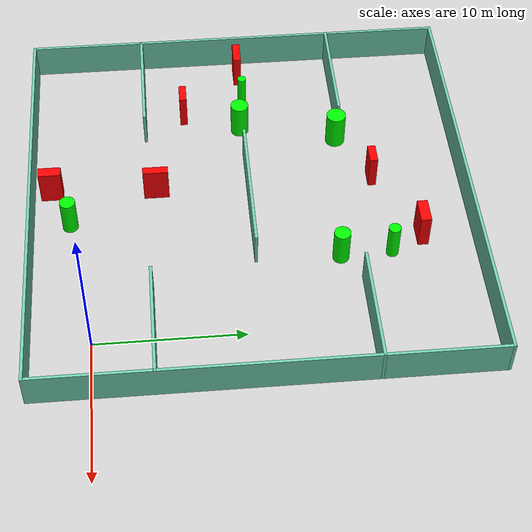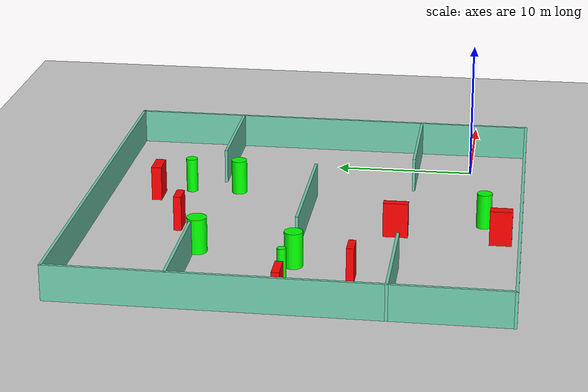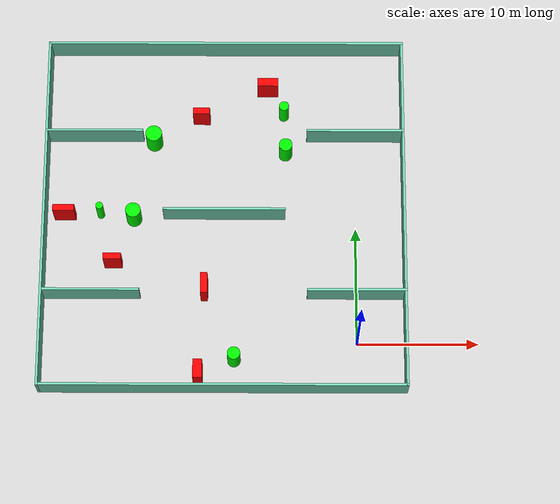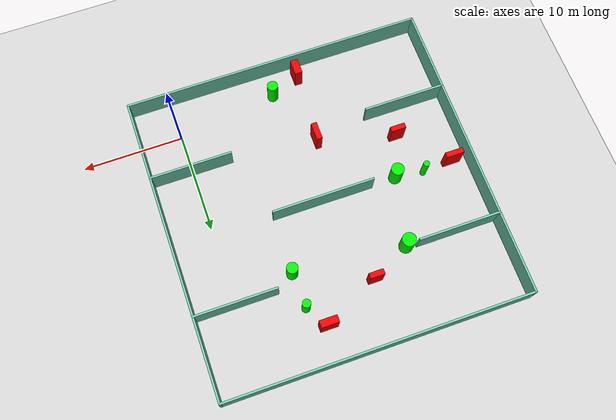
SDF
<sdf version="1.7">
 <world name="default">
  <light name="sun" type="directional">
   <pose>0 0 10 0 -0 0</pose>
   <diffuse>0.8 0.8 0.8 1</diffuse>
   <specular>0.2 0.2 0.2 1</specular>
   <attenuation>
    <range>1000</range>
    <constant>0.9</constant>
    <linear>0.01</linear>
    <quadratic>0.001</quadratic>
   </attenuation>
   <direction>-0.5 0.1 -0.9</direction>
   <spot><inner_angle>0</inner_angle><outer_angle>0</outer_angle><falloff>0</falloff></spot>
  </light>
  <model name="ground_plane">
   <static>1</static>
   <link name="link">
    <collision name="collision">
     <geometry><plane><normal>0 0 1</normal><size>100 100</size></plane></geometry>
     <surface>
      <contact><collide_bitmask>65535</collide_bitmask></contact>
      <friction><ode><mu>100</mu><mu2>50</mu2></ode></friction>
     </surface>
    </collision>
    <visual name="visual">
     <cast_shadows>0</cast_shadows>
     <geometry><plane><normal>0 0 1</normal><size>100 100</size></plane></geometry>
     <material>
      <script><uri>file://media/materials/scripts/gazebo.material</uri><name>Gazebo/Grey</name></script>
     </material>
    </visual>
   </link>
  </model>
  <gravity>0 0 -9.8</gravity>
  <magnetic_field>6e-06 2.3e-05 -4.2e-05</magnetic_field>
  <atmosphere type="adiabatic"/>
  <physics type="ode">
   <max_step_size>0.001</max_step_size>
   <real_time_factor>1</real_time_factor>
   <real_time_update_rate>1000</real_time_update_rate>
  </physics>
  <scene><ambient>0.4 0.4 0.4 1</ambient><background>0.7 0.7 0.7 1</background><shadows>1</shadows></scene>
  <spherical_coordinates>
   <surface_model>EARTH_WGS84</surface_model>
   <latitude_deg>0</latitude_deg>
   <longitude_deg>0</longitude_deg>
   <elevation>0</elevation>
   <heading_deg>0</heading_deg>
  </spherical_coordinates>
  <model name="my_base_walls">
   <link name="Wall_10">
    <collision name="Wall_10_Collision">
     <geometry><box><size>8.2 0.2 2.5</size></box></geometry>
     <pose>0 0 1.25 0 -0 0</pose>
    </collision>
    <visual name="Wall_10_Visual">
     <pose>0 0 1.25 0 -0 0</pose>
     <geometry><box><size>8.2 0.2 2.5</size></box></geometry>
     <material>
      <script><uri>file://media/materials/scripts/gazebo.material</uri><name>Gazebo/Grey</name></script>
      <ambient>0.435294 0.796078 0.67451 1</ambient>
     </material>
     <meta><layer>0</layer></meta>
    </visual>
    <pose>-11 -7 0 0 -0 0</pose>
   </link>
   <link name="Wall_12">
    <collision name="Wall_12_Collision">
     <geometry><box><size>8.2 0.2 2.5</size></box></geometry>
     <pose>0 0 1.25 0 -0 0</pose>
    </collision>
    <visual name="Wall_12_Visual">
     <pose>0 0 1.25 0 -0 0</pose>
     <geometry><box><size>8.2 0.2 2.5</size></box></geometry>
     <material>
      <script><uri>file://media/materials/scripts/gazebo.material</uri><name>Gazebo/Grey</name></script>
      <ambient>0.435294 0.796078 0.67451 1</ambient>
     </material>
     <meta><layer>0</layer></meta>
    </visual>
    <pose>-11 7 0 0 -0 0</pose>
   </link>
   <link name="Wall_14">
    <collision name="Wall_14_Collision">
     <geometry><box><size>8.2 0.2 2.5</size></box></geometry>
     <pose>0 0 1.25 0 -0 0</pose>
    </collision>
    <visual name="Wall_14_Visual">
     <pose>0 0 1.25 0 -0 0</pose>
     <geometry><box><size>8.2 0.2 2.5</size></box></geometry>
     <material>
      <script><uri>file://media/materials/scripts/gazebo.material</uri><name>Gazebo/Grey</name></script>
      <ambient>0.435294 0.796078 0.67451 1</ambient>
     </material>
     <meta><layer>0</layer></meta>
    </visual>
    <pose>11 7 0 0 -0 3.14159</pose>
   </link>
   <link name="Wall_16">
    <collision name="Wall_16_Collision">
     <geometry><box><size>10.2 0.2 2.5</size></box></geometry>
     <pose>0 0 1.25 0 -0 0</pose>
    </collision>
    <visual name="Wall_16_Visual">
     <pose>0 0 1.25 0 -0 0</pose>
     <geometry><box><size>10.2 0.2 2.5</size></box></geometry>
     <material>
      <script><uri>file://media/materials/scripts/gazebo.material</uri><name>Gazebo/Grey</name></script>
      <ambient>0.435294 0.796078 0.67451 1</ambient>
     </material>
     <meta><layer>0</layer></meta>
    </visual>
    <pose>0 0 0 0 -0 3.14159</pose>
   </link>
   <link name="Wall_2">
    <collision name="Wall_2_Collision">
     <geometry><box><size>30.2 0.2 2.5</size></box></geometry>
     <pose>0 0 1.25 0 -0 0</pose>
    </collision>
    <visual name="Wall_2_Visual">
     <pose>0 0 1.25 0 -0 0</pose>
     <geometry><box><size>30.2 0.2 2.5</size></box></geometry>
     <material>
      <script><uri>file://media/materials/scripts/gazebo.material</uri><name>Gazebo/Grey</name></script>
      <ambient>0.435294 0.796078 0.67451 1</ambient>
     </material>
     <meta><layer>0</layer></meta>
    </visual>
    <pose>0 -15 0 0 -0 3.14159</pose>
   </link>
   <link name="Wall_3">
    <collision name="Wall_3_Collision">
     <geometry><box><size>30.2 0.2 2.5</size></box></geometry>
     <pose>0 0 1.25 0 -0 0</pose>
    </collision>
    <visual name="Wall_3_Visual">
     <pose>0 0 1.25 0 -0 0</pose>
     <geometry><box><size>30.2 0.2 2.5</size></box></geometry>
     <material>
      <script><uri>file://media/materials/scripts/gazebo.material</uri><name>Gazebo/Grey</name></script>
      <ambient>0.435294 0.796078 0.67451 1</ambient>
     </material>
     <meta><layer>0</layer></meta>
    </visual>
    <pose>-15 0 0 0 -0 1.5708</pose>
   </link>
   <link name="Wall_4">
    <collision name="Wall_4_Collision">
     <geometry><box><size>30.2 0.2 2.5</size></box></geometry>
     <pose>0 0 1.25 0 -0 0</pose>
    </collision>
    <visual name="Wall_4_Visual">
     <pose>0 0 1.25 0 -0 0</pose>
     <geometry><box><size>30.2 0.2 2.5</size></box></geometry>
     <material>
      <script><uri>file://media/materials/scripts/gazebo.material</uri><name>Gazebo/Grey</name></script>
      <ambient>0.435294 0.796078 0.67451 1</ambient>
     </material>
     <meta><layer>0</layer></meta>
    </visual>
    <pose>0 15 0 0 -0 0</pose>
   </link>
   <link name="Wall_6">
    <collision name="Wall_6_Collision">
     <geometry><box><size>30.2 0.2 2.5</size></box></geometry>
     <pose>0 0 1.25 0 -0 0</pose>
    </collision>
    <visual name="Wall_6_Visual">
     <pose>0 0 1.25 0 -0 0</pose>
     <geometry><box><size>30.2 0.2 2.5</size></box></geometry>
     <material>
      <script><uri>file://media/materials/scripts/gazebo.material</uri><name>Gazebo/Grey</name></script>
      <ambient>0.435294 0.796078 0.67451 1</ambient>
     </material>
     <meta><layer>0</layer></meta>
    </visual>
    <pose>15 0 0 0 -0 1.5708</pose>
   </link>
   <link name="Wall_8">
    <collision name="Wall_8_Collision">
     <geometry><box><size>8.2 0.2 2.5</size></box></geometry>
     <pose>0 0 1.25 0 -0 0</pose>
    </collision>
    <visual name="Wall_8_Visual">
     <pose>0 0 1.25 0 -0 0</pose>
     <geometry><box><size>8.2 0.2 2.5</size></box></geometry>
     <material>
      <script><uri>file://media/materials/scripts/gazebo.material</uri><name>Gazebo/Grey</name></script>
      <ambient>0.435294 0.796078 0.67451 1</ambient>
     </material>
     <meta><layer>0</layer></meta>
    </visual>
    <pose>11 -7 0 0 -0 3.14159</pose>
   </link>
   <static>1</static>
   <pose>-11 11 0 0 -0 0</pose>
  </model>
  <model name="cylinder1">
   <static>1</static>
   <link name="link">
    <inertial>
     <mass>1</mass>
     <inertia><ixx>0.5</ixx><ixy>0</ixy><ixz>0</ixz><iyy>0.5</iyy><iyz>0</iyz><izz>1</izz></inertia>
    </inertial>
    <collision name="collision">
     <geometry><cylinder><radius>0.6865139779942604</radius><length>2.5</length></cylinder></geometry>
    </collision>
    <visual name="visual">
     <geometry><cylinder><radius>0.6865139779942604</radius><length>2.5</length></cylinder></geometry>
     <material>
      <ambient>0 1 0 1</ambient>
      <diffuse>0 1 0 1</diffuse>
      <specular>0.1 0.1 0.1 1</specular>
      <emissive>0 0 0 0</emissive>
     </material>
    </visual>
   </link>
   <pose>-16.98718560637878 17.69630135581526 1.25 0 0 0</pose>
  </model>
  <model name="cylinder2">
   <static>1</static>
   <link name="link">
    <inertial>
     <mass>1</mass>
     <inertia><ixx>0.5</ixx><ixy>0</ixy><ixz>0</ixz><iyy>0.5</iyy><iyz>0</iyz><izz>1</izz></inertia>
    </inertial>
    <collision name="collision">
     <geometry><cylinder><radius>0.4127260256377899</radius><length>2.5</length></cylinder></geometry>
    </collision>
    <visual name="visual">
     <geometry><cylinder><radius>0.4127260256377899</radius><length>2.5</length></cylinder></geometry>
     <material>
      <ambient>0 1 0 1</ambient>
      <diffuse>0 1 0 1</diffuse>
      <specular>0.1 0.1 0.1 1</specular>
      <emissive>0 0 0 0</emissive>
     </material>
    </visual>
   </link>
   <pose>-6.020732964482358 20.204076720187285 1.25 0 0 0</pose>
  </model>
  <model name="cylinder3">
   <static>1</static>
   <link name="link">
    <inertial>
     <mass>1</mass>
     <inertia><ixx>0.5</ixx><ixy>0</ixy><ixz>0</ixz><iyy>0.5</iyy><iyz>0</iyz><izz>1</izz></inertia>
    </inertial>
    <collision name="collision">
     <geometry><cylinder><radius>0.30105401744333277</radius><length>2.5</length></cylinder></geometry>
    </collision>
    <visual name="visual">
     <geometry><cylinder><radius>0.30105401744333277</radius><length>2.5</length></cylinder></geometry>
     <material>
      <ambient>0 1 0 1</ambient>
      <diffuse>0 1 0 1</diffuse>
      <specular>0.1 0.1 0.1 1</specular>
      <emissive>0 0 0 0</emissive>
     </material>
    </visual>
   </link>
   <pose>-21.38063452988642 11.25122979811248 1.25 0 0 0</pose>
  </model>
  <model name="cylinder4">
   <static>1</static>
   <link name="link">
    <inertial>
     <mass>1</mass>
     <inertia><ixx>0.5</ixx><ixy>0</ixy><ixz>0</ixz><iyy>0.5</iyy><iyz>0</iyz><izz>1</izz></inertia>
    </inertial>
    <collision name="collision">
     <geometry><cylinder><radius>0.6328953543085236</radius><length>2.5</length></cylinder></geometry>
    </collision>
    <visual name="visual">
     <geometry><cylinder><radius>0.6328953543085236</radius><length>2.5</length></cylinder></geometry>
     <material>
      <ambient>0 1 0 1</ambient>
      <diffuse>0 1 0 1</diffuse>
      <specular>0.1 0.1 0.1 1</specular>
      <emissive>0 0 0 0</emissive>
     </material>
    </visual>
   </link>
   <pose>-18.571631509725112 10.869606990377342 1.25 0 0 0</pose>
  </model>
  <model name="cylinder5">
   <static>1</static>
   <link name="link">
    <inertial>
     <mass>1</mass>
     <inertia><ixx>0.5</ixx><ixy>0</ixy><ixz>0</ixz><iyy>0.5</iyy><iyz>0</iyz><izz>1</izz></inertia>
    </inertial>
    <collision name="collision">
     <geometry><cylinder><radius>0.5335137383149583</radius><length>2.5</length></cylinder></geometry>
    </collision>
    <visual name="visual">
     <geometry><cylinder><radius>0.5335137383149583</radius><length>2.5</length></cylinder></geometry>
     <material>
      <ambient>0 1 0 1</ambient>
      <diffuse>0 1 0 1</diffuse>
      <specular>0.1 0.1 0.1 1</specular>
      <emissive>0 0 0 0</emissive>
     </material>
    </visual>
   </link>
   <pose>-10.10004138722047 -1.4046467524873858 1.25 0 0 0</pose>
  </model>
  <model name="cylinder6">
   <static>1</static>
   <link name="link">
    <inertial>
     <mass>1</mass>
     <inertia><ixx>0.5</ixx><ixy>0</ixy><ixz>0</ixz><iyy>0.5</iyy><iyz>0</iyz><izz>1</izz></inertia>
    </inertial>
    <collision name="collision">
     <geometry><cylinder><radius>0.5580892505850763</radius><length>2.5</length></cylinder></geometry>
    </collision>
    <visual name="visual">
     <geometry><cylinder><radius>0.5580892505850763</radius><length>2.5</length></cylinder></geometry>
     <material>
      <ambient>0 1 0 1</ambient>
      <diffuse>0 1 0 1</diffuse>
      <specular>0.1 0.1 0.1 1</specular>
      <emissive>0 0 0 0</emissive>
     </material>
    </visual>
   </link>
   <pose>-5.881686365998281 16.698551083590203 1.25 0 0 0</pose>
  </model>
  <model name="box1">
   <static>1</static>
   <link name="link">
    <inertial>
     <mass>1</mass>
     <inertia><ixx>0.083</ixx><ixy>0</ixy><ixz>0</ixz><iyy>0.083</iyy><iyz>0</iyz><izz>0.083</izz></inertia>
    </inertial>
    <collision name="collision">
     <geometry><box><size>1.4729592333700339 0.5096357246687401 2.5</size></box></geometry>
    </collision>
    <visual name="visual">
     <geometry><box><size>1.4729592333700339 0.5096357246687401 2.5</size></box></geometry>
     <material>
      <ambient>1 0 0 1</ambient>
      <diffuse>1 0 0 1</diffuse>
      <specular>0.1 0.1 0.1 1</specular>
      <emissive>0 0 0 0</emissive>
     </material>
    </visual>
    <sensor name="my_contact" type="contact">
     <contact><collision>box_collision</collision><topic>__default_topic__</topic></contact>
    </sensor>
   </link>
   <pose>-20.20319514035101 6.840338631910207 1.25 0 0 0</pose>
  </model>
  <model name="box2">
   <static>1</static>
   <link name="link">
    <inertial>
     <mass>1</mass>
     <inertia><ixx>0.083</ixx><ixy>0</ixy><ixz>0</ixz><iyy>0.083</iyy><iyz>0</iyz><izz>0.083</izz></inertia>
    </inertial>
    <collision name="collision">
     <geometry><box><size>1.7457091319033864 0.7191629260649463 2.5</size></box></geometry>
    </collision>
    <visual name="visual">
     <geometry><box><size>1.7457091319033864 0.7191629260649463 2.5</size></box></geometry>
     <material>
      <ambient>1 0 0 1</ambient>
      <diffuse>1 0 0 1</diffuse>
      <specular>0.1 0.1 0.1 1</specular>
      <emissive>0 0 0 0</emissive>
     </material>
    </visual>
    <sensor name="my_contact" type="contact">
     <contact><collision>box_collision</collision><topic>__default_topic__</topic></contact>
    </sensor>
   </link>
   <pose>-7.4070381896413835 22.397303923937137 1.25 0 0 0</pose>
  </model>
  <model name="box3">
   <static>1</static>
   <link name="link">
    <inertial>
     <mass>1</mass>
     <inertia><ixx>0.083</ixx><ixy>0</ixy><ixz>0</ixz><iyy>0.083</iyy><iyz>0</iyz><izz>0.083</izz></inertia>
    </inertial>
    <collision name="collision">
     <geometry><box><size>0.5666333622790454 1.73602105080487 2.5</size></box></geometry>
    </collision>
    <visual name="visual">
     <geometry><box><size>0.5666333622790454 1.73602105080487 2.5</size></box></geometry>
     <material>
      <ambient>1 0 0 1</ambient>
      <diffuse>1 0 0 1</diffuse>
      <specular>0.1 0.1 0.1 1</specular>
      <emissive>0 0 0 0</emissive>
     </material>
    </visual>
    <sensor name="my_contact" type="contact">
     <contact><collision>box_collision</collision><topic>__default_topic__</topic></contact>
    </sensor>
   </link>
   <pose>-12.599822361435459 4.58877338661452 1.25 0 0 0</pose>
  </model>
  <model name="box4">
   <static>1</static>
   <link name="link">
    <inertial>
     <mass>1</mass>
     <inertia><ixx>0.083</ixx><ixy>0</ixy><ixz>0</ixz><iyy>0.083</iyy><iyz>0</iyz><izz>0.083</izz></inertia>
    </inertial>
    <collision name="collision">
     <geometry><box><size>1.4150321575319627 0.5479818273765862 2.5</size></box></geometry>
    </collision>
    <visual name="visual">
     <geometry><box><size>1.4150321575319627 0.5479818273765862 2.5</size></box></geometry>
     <material>
      <ambient>1 0 0 1</ambient>
      <diffuse>1 0 0 1</diffuse>
      <specular>0.1 0.1 0.1 1</specular>
      <emissive>0 0 0 0</emissive>
     </material>
    </visual>
    <sensor name="my_contact" type="contact">
     <contact><collision>box_collision</collision><topic>__default_topic__</topic></contact>
    </sensor>
   </link>
   <pose>-12.996880182472015 19.737449303268274 1.25 0 0 0</pose>
  </model>
  <model name="box5">
   <static>1</static>
   <link name="link">
    <inertial>
     <mass>1</mass>
     <inertia><ixx>0.083</ixx><ixy>0</ixy><ixz>0</ixz><iyy>0.083</iyy><iyz>0</iyz><izz>0.083</izz></inertia>
    </inertial>
    <collision name="collision">
     <geometry><box><size>0.7517971549744915 1.5432651711600096 2.5</size></box></geometry>
    </collision>
    <visual name="visual">
     <geometry><box><size>0.7517971549744915 1.5432651711600096 2.5</size></box></geometry>
     <material>
      <ambient>1 0 0 1</ambient>
      <diffuse>1 0 0 1</diffuse>
      <specular>0.1 0.1 0.1 1</specular>
      <emissive>0 0 0 0</emissive>
     </material>
    </visual>
    <sensor name="my_contact" type="contact">
     <contact><collision>box_collision</collision><topic>__default_topic__</topic></contact>
    </sensor>
   </link>
   <pose>-13.035021882063495 -2.6712388180617617 1.25 0 0 0</pose>
  </model>
  <model name="box6">
   <static>1</static>
   <link name="link">
    <inertial>
     <mass>1</mass>
     <inertia><ixx>0.083</ixx><ixy>0</ixy><ixz>0</ixz><iyy>0.083</iyy><iyz>0</iyz><izz>0.083</izz></inertia>
    </inertial>
    <collision name="collision">
     <geometry><box><size>1.783271133554122 0.5334007731296848 2.5</size></box></geometry>
    </collision>
    <visual name="visual">
     <geometry><box><size>1.783271133554122 0.5334007731296848 2.5</size></box></geometry>
     <material>
      <ambient>1 0 0 1</ambient>
      <diffuse>1 0 0 1</diffuse>
      <specular>0.1 0.1 0.1 1</specular>
      <emissive>0 0 0 0</emissive>
     </material>
    </visual>
    <sensor name="my_contact" type="contact">
     <contact><collision>box_collision</collision><topic>__default_topic__</topic></contact>
    </sensor>
   </link>
   <pose>-24.36342837206102 11.082619006795218 1.25 0 0 0</pose>
  </model>
 </world>
</sdf>
